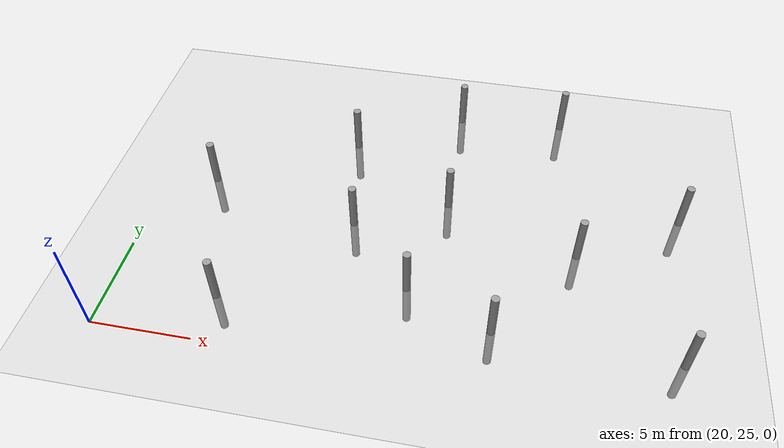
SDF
<sdf version="1.6">
 <world name="default">
  <model name="ground_plane">
   <static>1</static>
   <link name="link">
    <collision name="collision">
     <geometry><plane><normal>0 0 1</normal><size>100 100</size></plane></geometry>
     <surface><friction><ode><mu>100</mu><mu2>50</mu2></ode></friction></surface>
    </collision>
    <visual name="visual">
     <cast_shadows>0</cast_shadows>
     <geometry><plane><normal>0 0 1</normal><size>100 100</size></plane></geometry>
     <material>
      <script><uri>file://media/materials/scripts/gazebo.material</uri><name>Gazebo/Grey</name></script>
     </material>
    </visual>
   </link>
  </model>
  <model name="empty_pillars_4">
   <link name="link">
    <inertial>
     <mass>1</mass>
     <inertia><ixx>0.145833</ixx><ixy>0</ixy><ixz>0</ixz><iyy>0.145833</iyy><iyz>0</iyz><izz>0.125</izz></inertia>
    </inertial>
    <visual name="visual">
     <geometry><cylinder><radius>0.2</radius><length>5</length></cylinder></geometry>
     <material>
      <script><name>Gazebo/Grey</name><uri>file://media/materials/scripts/gazebo.material</uri></script>
      <shader type="vertex"><normal_map>__default__</normal_map></shader>
      <ambient>0.3 0.3 0.3 1</ambient>
      <diffuse>0.7 0.7 0.7 1</diffuse>
      <specular>0.01 0.01 0.01 1</specular>
      <emissive>0 0 0 1</emissive>
     </material>
    </visual>
    <collision name="collision">
     <geometry><cylinder><radius>0.05</radius><length>5</length></cylinder></geometry>
     <surface>
      <friction>
       <ode><mu>1</mu><mu2>1</mu2><fdir1>0 0 0</fdir1><slip1>0</slip1><slip2>0</slip2></ode>
       <torsional>
        <coefficient>1</coefficient>
        <patch_radius>0</patch_radius>
        <surface_radius>0</surface_radius>
        <use_patch_radius>1</use_patch_radius>
        <ode><slip>0</slip></ode>
       </torsional>
      </friction>
      <bounce><restitution_coefficient>0</restitution_coefficient><threshold>1e+06</threshold></bounce>
      <contact>
       <collide_without_contact>0</collide_without_contact>
       <collide_without_contact_bitmask>1</collide_without_contact_bitmask>
       <collide_bitmask>1</collide_bitmask>
       <ode>
        <soft_cfm>0</soft_cfm>
        <soft_erp>0.2</soft_erp>
        <kp>1e+13</kp>
        <kd>1</kd>
        <max_vel>0.01</max_vel>
        <min_depth>0</min_depth>
       </ode>
       <bullet>
        <split_impulse>1</split_impulse>
        <split_impulse_penetration_threshold>-0.01</split_impulse_penetration_threshold>
        <soft_cfm>0</soft_cfm>
        <soft_erp>0.2</soft_erp>
        <kp>1e+13</kp>
        <kd>1</kd>
       </bullet>
      </contact>
     </surface>
    </collision>
   </link>
   <model name="empty_pillar_clone_1">
    <link name="link">
     <inertial>
      <mass>1</mass>
      <inertia><ixx>0.145833</ixx><ixy>0</ixy><ixz>0</ixz><iyy>0.145833</iyy><iyz>0</iyz><izz>0.125</izz></inertia>
     </inertial>
     <visual name="visual">
      <geometry><cylinder><radius>0.2</radius><length>5</length></cylinder></geometry>
      <material>
       <script><name>Gazebo/Grey</name><uri>file://media/materials/scripts/gazebo.material</uri></script>
       <shader type="vertex"><normal_map>__default__</normal_map></shader>
       <ambient>0.3 0.3 0.3 1</ambient>
       <diffuse>0.7 0.7 0.7 1</diffuse>
       <specular>0.01 0.01 0.01 1</specular>
       <emissive>0 0 0 1</emissive>
      </material>
     </visual>
     <collision name="collision">
      <geometry><cylinder><radius>0.05</radius><length>5</length></cylinder></geometry>
      <surface>
       <friction>
        <ode><mu>1</mu><mu2>1</mu2><fdir1>0 0 0</fdir1><slip1>0</slip1><slip2>0</slip2></ode>
        <torsional>
         <coefficient>1</coefficient>
         <patch_radius>0</patch_radius>
         <surface_radius>0</surface_radius>
         <use_patch_radius>1</use_patch_radius>
         <ode><slip>0</slip></ode>
        </torsional>
       </friction>
       <bounce><restitution_coefficient>0</restitution_coefficient><threshold>1e+06</threshold></bounce>
       <contact>
        <collide_without_contact>0</collide_without_contact>
        <collide_without_contact_bitmask>1</collide_without_contact_bitmask>
        <collide_bitmask>1</collide_bitmask>
        <ode>
         <soft_cfm>0</soft_cfm>
         <soft_erp>0.2</soft_erp>
         <kp>1e+13</kp>
         <kd>1</kd>
         <max_vel>0.01</max_vel>
         <min_depth>0</min_depth>
        </ode>
        <bullet>
         <split_impulse>1</split_impulse>
         <split_impulse_penetration_threshold>-0.01</split_impulse_penetration_threshold>
         <soft_cfm>0</soft_cfm>
         <soft_erp>0.2</soft_erp>
         <kp>1e+13</kp>
         <kd>1</kd>
        </bullet>
       </contact>
      </surface>
     </collision>
    </link>
    <static>0</static>
    <pose>8.92248 2.14838 0 0 -0 0</pose>
   </model>
   <model name="empty_pillar_clone_27">
    <link name="link">
     <inertial>
      <mass>1</mass>
      <inertia><ixx>0.145833</ixx><ixy>0</ixy><ixz>0</ixz><iyy>0.145833</iyy><iyz>0</iyz><izz>0.125</izz></inertia>
     </inertial>
     <visual name="visual">
      <geometry><cylinder><radius>0.2</radius><length>5</length></cylinder></geometry>
      <material>
       <script><name>Gazebo/Grey</name><uri>file://media/materials/scripts/gazebo.material</uri></script>
       <shader type="vertex"><normal_map>__default__</normal_map></shader>
       <ambient>0.3 0.3 0.3 1</ambient>
       <diffuse>0.7 0.7 0.7 1</diffuse>
       <specular>0.01 0.01 0.01 1</specular>
       <emissive>0 0 0 1</emissive>
      </material>
     </visual>
     <collision name="collision">
      <geometry><cylinder><radius>0.05</radius><length>5</length></cylinder></geometry>
      <surface>
       <friction>
        <ode><mu>1</mu><mu2>1</mu2><fdir1>0 0 0</fdir1><slip1>0</slip1><slip2>0</slip2></ode>
        <torsional>
         <coefficient>1</coefficient>
         <patch_radius>0</patch_radius>
         <surface_radius>0</surface_radius>
         <use_patch_radius>1</use_patch_radius>
         <ode><slip>0</slip></ode>
        </torsional>
       </friction>
       <bounce><restitution_coefficient>0</restitution_coefficient><threshold>1e+06</threshold></bounce>
       <contact>
        <collide_without_contact>0</collide_without_contact>
        <collide_without_contact_bitmask>1</collide_without_contact_bitmask>
        <collide_bitmask>1</collide_bitmask>
        <ode>
         <soft_cfm>0</soft_cfm>
         <soft_erp>0.2</soft_erp>
         <kp>1e+13</kp>
         <kd>1</kd>
         <max_vel>0.01</max_vel>
         <min_depth>0</min_depth>
        </ode>
        <bullet>
         <split_impulse>1</split_impulse>
         <split_impulse_penetration_threshold>-0.01</split_impulse_penetration_threshold>
         <soft_cfm>0</soft_cfm>
         <soft_erp>0.2</soft_erp>
         <kp>1e+13</kp>
         <kd>1</kd>
        </bullet>
       </contact>
      </surface>
     </collision>
    </link>
    <static>0</static>
    <pose>4.32163 11.823 0 0 -0 0</pose>
   </model>
   <model name="empty_pillar_clone_28">
    <link name="link">
     <inertial>
      <mass>1</mass>
      <inertia><ixx>0.145833</ixx><ixy>0</ixy><ixz>0</ixz><iyy>0.145833</iyy><iyz>0</iyz><izz>0.125</izz></inertia>
     </inertial>
     <visual name="visual">
      <geometry><cylinder><radius>0.2</radius><length>5</length></cylinder></geometry>
      <material>
       <script><name>Gazebo/Grey</name><uri>file://media/materials/scripts/gazebo.material</uri></script>
       <shader type="vertex"><normal_map>__default__</normal_map></shader>
       <ambient>0.3 0.3 0.3 1</ambient>
       <diffuse>0.7 0.7 0.7 1</diffuse>
       <specular>0.01 0.01 0.01 1</specular>
       <emissive>0 0 0 1</emissive>
      </material>
     </visual>
     <collision name="collision">
      <geometry><cylinder><radius>0.05</radius><length>5</length></cylinder></geometry>
      <surface>
       <friction>
        <ode><mu>1</mu><mu2>1</mu2><fdir1>0 0 0</fdir1><slip1>0</slip1><slip2>0</slip2></ode>
        <torsional>
         <coefficient>1</coefficient>
         <patch_radius>0</patch_radius>
         <surface_radius>0</surface_radius>
         <use_patch_radius>1</use_patch_radius>
         <ode><slip>0</slip></ode>
        </torsional>
       </friction>
       <bounce><restitution_coefficient>0</restitution_coefficient><threshold>1e+06</threshold></bounce>
       <contact>
        <collide_without_contact>0</collide_without_contact>
        <collide_without_contact_bitmask>1</collide_without_contact_bitmask>
        <collide_bitmask>1</collide_bitmask>
        <ode>
         <soft_cfm>0</soft_cfm>
         <soft_erp>0.2</soft_erp>
         <kp>1e+13</kp>
         <kd>1</kd>
         <max_vel>0.01</max_vel>
         <min_depth>0</min_depth>
        </ode>
        <bullet>
         <split_impulse>1</split_impulse>
         <split_impulse_penetration_threshold>-0.01</split_impulse_penetration_threshold>
         <soft_cfm>0</soft_cfm>
         <soft_erp>0.2</soft_erp>
         <kp>1e+13</kp>
         <kd>1</kd>
        </bullet>
       </contact>
      </surface>
     </collision>
    </link>
    <static>0</static>
    <pose>15.5447 15.5867 0 0 -0 0</pose>
   </model>
   <model name="empty_pillar_clone_29">
    <link name="link">
     <inertial>
      <mass>1</mass>
      <inertia><ixx>0.145833</ixx><ixy>0</ixy><ixz>0</ixz><iyy>0.145833</iyy><iyz>0</iyz><izz>0.125</izz></inertia>
     </inertial>
     <visual name="visual">
      <geometry><cylinder><radius>0.2</radius><length>5</length></cylinder></geometry>
      <material>
       <script><name>Gazebo/Grey</name><uri>file://media/materials/scripts/gazebo.material</uri></script>
       <shader type="vertex"><normal_map>__default__</normal_map></shader>
       <ambient>0.3 0.3 0.3 1</ambient>
       <diffuse>0.7 0.7 0.7 1</diffuse>
       <specular>0.01 0.01 0.01 1</specular>
       <emissive>0 0 0 1</emissive>
      </material>
     </visual>
     <collision name="collision">
      <geometry><cylinder><radius>0.05</radius><length>5</length></cylinder></geometry>
      <surface>
       <friction>
        <ode><mu>1</mu><mu2>1</mu2><fdir1>0 0 0</fdir1><slip1>0</slip1><slip2>0</slip2></ode>
        <torsional>
         <coefficient>1</coefficient>
         <patch_radius>0</patch_radius>
         <surface_radius>0</surface_radius>
         <use_patch_radius>1</use_patch_radius>
         <ode><slip>0</slip></ode>
        </torsional>
       </friction>
       <bounce><restitution_coefficient>0</restitution_coefficient><threshold>1e+06</threshold></bounce>
       <contact>
        <collide_without_contact>0</collide_without_contact>
        <collide_without_contact_bitmask>1</collide_without_contact_bitmask>
        <collide_bitmask>1</collide_bitmask>
        <ode>
         <soft_cfm>0</soft_cfm>
         <soft_erp>0.2</soft_erp>
         <kp>1e+13</kp>
         <kd>1</kd>
         <max_vel>0.01</max_vel>
         <min_depth>0</min_depth>
        </ode>
        <bullet>
         <split_impulse>1</split_impulse>
         <split_impulse_penetration_threshold>-0.01</split_impulse_penetration_threshold>
         <soft_cfm>0</soft_cfm>
         <soft_erp>0.2</soft_erp>
         <kp>1e+13</kp>
         <kd>1</kd>
        </bullet>
       </contact>
      </surface>
     </collision>
    </link>
    <static>0</static>
    <pose>10.08 8.0876 0 0 -0 0</pose>
   </model>
   <model name="empty_pillar_clone_31">
    <link name="link">
     <inertial>
      <mass>1</mass>
      <inertia><ixx>0.145833</ixx><ixy>0</ixy><ixz>0</ixz><iyy>0.145833</iyy><iyz>0</iyz><izz>0.125</izz></inertia>
     </inertial>
     <visual name="visual">
      <geometry><cylinder><radius>0.2</radius><length>5</length></cylinder></geometry>
      <material>
       <script><name>Gazebo/Grey</name><uri>file://media/materials/scripts/gazebo.material</uri></script>
       <shader type="vertex"><normal_map>__default__</normal_map></shader>
       <ambient>0.3 0.3 0.3 1</ambient>
       <diffuse>0.7 0.7 0.7 1</diffuse>
       <specular>0.01 0.01 0.01 1</specular>
       <emissive>0 0 0 1</emissive>
      </material>
     </visual>
     <collision name="collision">
      <geometry><cylinder><radius>0.05</radius><length>5</length></cylinder></geometry>
      <surface>
       <friction>
        <ode><mu>1</mu><mu2>1</mu2><fdir1>0 0 0</fdir1><slip1>0</slip1><slip2>0</slip2></ode>
        <torsional>
         <coefficient>1</coefficient>
         <patch_radius>0</patch_radius>
         <surface_radius>0</surface_radius>
         <use_patch_radius>1</use_patch_radius>
         <ode><slip>0</slip></ode>
        </torsional>
       </friction>
       <bounce><restitution_coefficient>0</restitution_coefficient><threshold>1e+06</threshold></bounce>
       <contact>
        <collide_without_contact>0</collide_without_contact>
        <collide_without_contact_bitmask>1</collide_without_contact_bitmask>
        <collide_bitmask>1</collide_bitmask>
        <ode>
         <soft_cfm>0</soft_cfm>
         <soft_erp>0.2</soft_erp>
         <kp>1e+13</kp>
         <kd>1</kd>
         <max_vel>0.01</max_vel>
         <min_depth>0</min_depth>
        </ode>
        <bullet>
         <split_impulse>1</split_impulse>
         <split_impulse_penetration_threshold>-0.01</split_impulse_penetration_threshold>
         <soft_cfm>0</soft_cfm>
         <soft_erp>0.2</soft_erp>
         <kp>1e+13</kp>
         <kd>1</kd>
        </bullet>
       </contact>
      </surface>
     </collision>
    </link>
    <static>0</static>
    <pose>22.0722 9.04182 0 0 -0 0</pose>
   </model>
   <model name="empty_pillar_clone_32">
    <link name="link">
     <inertial>
      <mass>1</mass>
      <inertia><ixx>0.145833</ixx><ixy>0</ixy><ixz>0</ixz><iyy>0.145833</iyy><iyz>0</iyz><izz>0.125</izz></inertia>
     </inertial>
     <visual name="visual">
      <geometry><cylinder><radius>0.2</radius><length>5</length></cylinder></geometry>
      <material>
       <script><name>Gazebo/Grey</name><uri>file://media/materials/scripts/gazebo.material</uri></script>
       <shader type="vertex"><normal_map>__default__</normal_map></shader>
       <ambient>0.3 0.3 0.3 1</ambient>
       <diffuse>0.7 0.7 0.7 1</diffuse>
       <specular>0.01 0.01 0.01 1</specular>
       <emissive>0 0 0 1</emissive>
      </material>
     </visual>
     <collision name="collision">
      <geometry><cylinder><radius>0.05</radius><length>5</length></cylinder></geometry>
      <surface>
       <friction>
        <ode><mu>1</mu><mu2>1</mu2><fdir1>0 0 0</fdir1><slip1>0</slip1><slip2>0</slip2></ode>
        <torsional>
         <coefficient>1</coefficient>
         <patch_radius>0</patch_radius>
         <surface_radius>0</surface_radius>
         <use_patch_radius>1</use_patch_radius>
         <ode><slip>0</slip></ode>
        </torsional>
       </friction>
       <bounce><restitution_coefficient>0</restitution_coefficient><threshold>1e+06</threshold></bounce>
       <contact>
        <collide_without_contact>0</collide_without_contact>
        <collide_without_contact_bitmask>1</collide_without_contact_bitmask>
        <collide_bitmask>1</collide_bitmask>
        <ode>
         <soft_cfm>0</soft_cfm>
         <soft_erp>0.2</soft_erp>
         <kp>1e+13</kp>
         <kd>1</kd>
         <max_vel>0.01</max_vel>
         <min_depth>0</min_depth>
        </ode>
        <bullet>
         <split_impulse>1</split_impulse>
         <split_impulse_penetration_threshold>-0.01</split_impulse_penetration_threshold>
         <soft_cfm>0</soft_cfm>
         <soft_erp>0.2</soft_erp>
         <kp>1e+13</kp>
         <kd>1</kd>
        </bullet>
       </contact>
      </surface>
     </collision>
    </link>
    <static>0</static>
    <pose>21.9854 0.15966 0 0 -0 0</pose>
   </model>
   <model name="empty_pillar_clone_49">
    <link name="link">
     <inertial>
      <mass>1</mass>
      <inertia><ixx>0.145833</ixx><ixy>0</ixy><ixz>0</ixz><iyy>0.145833</iyy><iyz>0</iyz><izz>0.125</izz></inertia>
     </inertial>
     <visual name="visual">
      <geometry><cylinder><radius>0.2</radius><length>5</length></cylinder></geometry>
      <material>
       <script><name>Gazebo/Grey</name><uri>file://media/materials/scripts/gazebo.material</uri></script>
       <shader type="vertex"><normal_map>__default__</normal_map></shader>
       <ambient>0.3 0.3 0.3 1</ambient>
       <diffuse>0.7 0.7 0.7 1</diffuse>
       <specular>0.01 0.01 0.01 1</specular>
       <emissive>0 0 0 1</emissive>
      </material>
     </visual>
     <collision name="collision">
      <geometry><cylinder><radius>0.05</radius><length>5</length></cylinder></geometry>
      <surface>
       <friction>
        <ode><mu>1</mu><mu2>1</mu2><fdir1>0 0 0</fdir1><slip1>0</slip1><slip2>0</slip2></ode>
        <torsional>
         <coefficient>1</coefficient>
         <patch_radius>0</patch_radius>
         <surface_radius>0</surface_radius>
         <use_patch_radius>1</use_patch_radius>
         <ode><slip>0</slip></ode>
        </torsional>
       </friction>
       <bounce><restitution_coefficient>0</restitution_coefficient><threshold>1e+06</threshold></bounce>
       <contact>
        <collide_without_contact>0</collide_without_contact>
        <collide_without_contact_bitmask>1</collide_without_contact_bitmask>
        <collide_bitmask>1</collide_bitmask>
        <ode>
         <soft_cfm>0</soft_cfm>
         <soft_erp>0.2</soft_erp>
         <kp>1e+13</kp>
         <kd>1</kd>
         <max_vel>0.01</max_vel>
         <min_depth>0</min_depth>
        </ode>
        <bullet>
         <split_impulse>1</split_impulse>
         <split_impulse_penetration_threshold>-0.01</split_impulse_penetration_threshold>
         <soft_cfm>0</soft_cfm>
         <soft_erp>0.2</soft_erp>
         <kp>1e+13</kp>
         <kd>1</kd>
        </bullet>
       </contact>
      </surface>
     </collision>
    </link>
    <static>0</static>
    <pose>9.84768 15.1425 0 0 -0 0</pose>
   </model>
   <model name="empty_pillar_clone_55">
    <link name="link">
     <inertial>
      <mass>1</mass>
      <inertia><ixx>0.145833</ixx><ixy>0</ixy><ixz>0</ixz><iyy>0.145833</iyy><iyz>0</iyz><izz>0.125</izz></inertia>
     </inertial>
     <visual name="visual">
      <geometry><cylinder><radius>0.2</radius><length>5</length></cylinder></geometry>
      <material>
       <script><name>Gazebo/Grey</name><uri>file://media/materials/scripts/gazebo.material</uri></script>
       <shader type="vertex"><normal_map>__default__</normal_map></shader>
       <ambient>0.3 0.3 0.3 1</ambient>
       <diffuse>0.7 0.7 0.7 1</diffuse>
       <specular>0.01 0.01 0.01 1</specular>
       <emissive>0 0 0 1</emissive>
      </material>
     </visual>
     <collision name="collision">
      <geometry><cylinder><radius>0.05</radius><length>5</length></cylinder></geometry>
      <surface>
       <friction>
        <ode><mu>1</mu><mu2>1</mu2><fdir1>0 0 0</fdir1><slip1>0</slip1><slip2>0</slip2></ode>
        <torsional>
         <coefficient>1</coefficient>
         <patch_radius>0</patch_radius>
         <surface_radius>0</surface_radius>
         <use_patch_radius>1</use_patch_radius>
         <ode><slip>0</slip></ode>
        </torsional>
       </friction>
       <bounce><restitution_coefficient>0</restitution_coefficient><threshold>1e+06</threshold></bounce>
       <contact>
        <collide_without_contact>0</collide_without_contact>
        <collide_without_contact_bitmask>1</collide_without_contact_bitmask>
        <collide_bitmask>1</collide_bitmask>
        <ode>
         <soft_cfm>0</soft_cfm>
         <soft_erp>0.2</soft_erp>
         <kp>1e+13</kp>
         <kd>1</kd>
         <max_vel>0.01</max_vel>
         <min_depth>0</min_depth>
        </ode>
        <bullet>
         <split_impulse>1</split_impulse>
         <split_impulse_penetration_threshold>-0.01</split_impulse_penetration_threshold>
         <soft_cfm>0</soft_cfm>
         <soft_erp>0.2</soft_erp>
         <kp>1e+13</kp>
         <kd>1</kd>
        </bullet>
       </contact>
      </surface>
     </collision>
    </link>
    <static>0</static>
    <pose>13.2247 0.382706 0 0 -0 0</pose>
   </model>
   <model name="empty_pillar_clone_56">
    <link name="link">
     <inertial>
      <mass>1</mass>
      <inertia><ixx>0.145833</ixx><ixy>0</ixy><ixz>0</ixz><iyy>0.145833</iyy><iyz>0</iyz><izz>0.125</izz></inertia>
     </inertial>
     <visual name="visual">
      <geometry><cylinder><radius>0.2</radius><length>5</length></cylinder></geometry>
      <material>
       <script><name>Gazebo/Grey</name><uri>file://media/materials/scripts/gazebo.material</uri></script>
       <shader type="vertex"><normal_map>__default__</normal_map></shader>
       <ambient>0.3 0.3 0.3 1</ambient>
       <diffuse>0.7 0.7 0.7 1</diffuse>
       <specular>0.01 0.01 0.01 1</specular>
       <emissive>0 0 0 1</emissive>
      </material>
     </visual>
     <collision name="collision">
      <geometry><cylinder><radius>0.05</radius><length>5</length></cylinder></geometry>
      <surface>
       <friction>
        <ode><mu>1</mu><mu2>1</mu2><fdir1>0 0 0</fdir1><slip1>0</slip1><slip2>0</slip2></ode>
        <torsional>
         <coefficient>1</coefficient>
         <patch_radius>0</patch_radius>
         <surface_radius>0</surface_radius>
         <use_patch_radius>1</use_patch_radius>
         <ode><slip>0</slip></ode>
        </torsional>
       </friction>
       <bounce><restitution_coefficient>0</restitution_coefficient><threshold>1e+06</threshold></bounce>
       <contact>
        <collide_without_contact>0</collide_without_contact>
        <collide_without_contact_bitmask>1</collide_without_contact_bitmask>
        <collide_bitmask>1</collide_bitmask>
        <ode>
         <soft_cfm>0</soft_cfm>
         <soft_erp>0.2</soft_erp>
         <kp>1e+13</kp>
         <kd>1</kd>
         <max_vel>0.01</max_vel>
         <min_depth>0</min_depth>
        </ode>
        <bullet>
         <split_impulse>1</split_impulse>
         <split_impulse_penetration_threshold>-0.01</split_impulse_penetration_threshold>
         <soft_cfm>0</soft_cfm>
         <soft_erp>0.2</soft_erp>
         <kp>1e+13</kp>
         <kd>1</kd>
        </bullet>
       </contact>
      </surface>
     </collision>
    </link>
    <static>0</static>
    <pose>-2.69782 7.67053 0 0 -0 0</pose>
   </model>
   <model name="empty_pillar_clone_57">
    <link name="link">
     <inertial>
      <mass>1</mass>
      <inertia><ixx>0.145833</ixx><ixy>0</ixy><ixz>0</ixz><iyy>0.145833</iyy><iyz>0</iyz><izz>0.125</izz></inertia>
     </inertial>
     <visual name="visual">
      <geometry><cylinder><radius>0.2</radius><length>5</length></cylinder></geometry>
      <material>
       <script><name>Gazebo/Grey</name><uri>file://media/materials/scripts/gazebo.material</uri></script>
       <shader type="vertex"><normal_map>__default__</normal_map></shader>
       <ambient>0.3 0.3 0.3 1</ambient>
       <diffuse>0.7 0.7 0.7 1</diffuse>
       <specular>0.01 0.01 0.01 1</specular>
       <emissive>0 0 0 1</emissive>
      </material>
     </visual>
     <collision name="collision">
      <geometry><cylinder><radius>0.05</radius><length>5</length></cylinder></geometry>
      <surface>
       <friction>
        <ode><mu>1</mu><mu2>1</mu2><fdir1>0 0 0</fdir1><slip1>0</slip1><slip2>0</slip2></ode>
        <torsional>
         <coefficient>1</coefficient>
         <patch_radius>0</patch_radius>
         <surface_radius>0</surface_radius>
         <use_patch_radius>1</use_patch_radius>
         <ode><slip>0</slip></ode>
        </torsional>
       </friction>
       <bounce><restitution_coefficient>0</restitution_coefficient><threshold>1e+06</threshold></bounce>
       <contact>
        <collide_without_contact>0</collide_without_contact>
        <collide_without_contact_bitmask>1</collide_without_contact_bitmask>
        <collide_bitmask>1</collide_bitmask>
        <ode>
         <soft_cfm>0</soft_cfm>
         <soft_erp>0.2</soft_erp>
         <kp>1e+13</kp>
         <kd>1</kd>
         <max_vel>0.01</max_vel>
         <min_depth>0</min_depth>
        </ode>
        <bullet>
         <split_impulse>1</split_impulse>
         <split_impulse_penetration_threshold>-0.01</split_impulse_penetration_threshold>
         <soft_cfm>0</soft_cfm>
         <soft_erp>0.2</soft_erp>
         <kp>1e+13</kp>
         <kd>1</kd>
        </bullet>
       </contact>
      </surface>
     </collision>
    </link>
    <static>0</static>
    <pose>5.4355 5.86468 0 0 -0 0</pose>
   </model>
   <model name="empty_pillar_clone_7">
    <link name="link">
     <inertial>
      <mass>1</mass>
      <inertia><ixx>0.145833</ixx><ixy>0</ixy><ixz>0</ixz><iyy>0.145833</iyy><iyz>0</iyz><izz>0.125</izz></inertia>
     </inertial>
     <visual name="visual">
      <geometry><cylinder><radius>0.2</radius><length>5</length></cylinder></geometry>
      <material>
       <script><name>Gazebo/Grey</name><uri>file://media/materials/scripts/gazebo.material</uri></script>
       <shader type="vertex"><normal_map>__default__</normal_map></shader>
       <ambient>0.3 0.3 0.3 1</ambient>
       <diffuse>0.7 0.7 0.7 1</diffuse>
       <specular>0.01 0.01 0.01 1</specular>
       <emissive>0 0 0 1</emissive>
      </material>
     </visual>
     <collision name="collision">
      <geometry><cylinder><radius>0.05</radius><length>5</length></cylinder></geometry>
      <surface>
       <friction>
        <ode><mu>1</mu><mu2>1</mu2><fdir1>0 0 0</fdir1><slip1>0</slip1><slip2>0</slip2></ode>
        <torsional>
         <coefficient>1</coefficient>
         <patch_radius>0</patch_radius>
         <surface_radius>0</surface_radius>
         <use_patch_radius>1</use_patch_radius>
         <ode><slip>0</slip></ode>
        </torsional>
       </friction>
       <bounce><restitution_coefficient>0</restitution_coefficient><threshold>1e+06</threshold></bounce>
       <contact>
        <collide_without_contact>0</collide_without_contact>
        <collide_without_contact_bitmask>1</collide_without_contact_bitmask>
        <collide_bitmask>1</collide_bitmask>
        <ode>
         <soft_cfm>0</soft_cfm>
         <soft_erp>0.2</soft_erp>
         <kp>1e+13</kp>
         <kd>1</kd>
         <max_vel>0.01</max_vel>
         <min_depth>0</min_depth>
        </ode>
        <bullet>
         <split_impulse>1</split_impulse>
         <split_impulse_penetration_threshold>-0.01</split_impulse_penetration_threshold>
         <soft_cfm>0</soft_cfm>
         <soft_erp>0.2</soft_erp>
         <kp>1e+13</kp>
         <kd>1</kd>
        </bullet>
       </contact>
      </surface>
     </collision>
    </link>
    <static>0</static>
    <pose>16.9242 5.74519 0 0 -0 0</pose>
   </model>
   <static>0</static>
   <pose>25.2837 27.6164 0 0 -0 0</pose>
  </model>
 </world>
</sdf>
